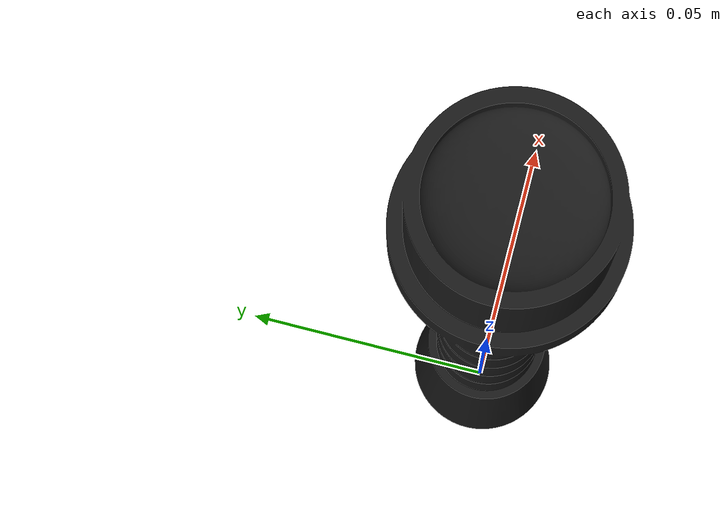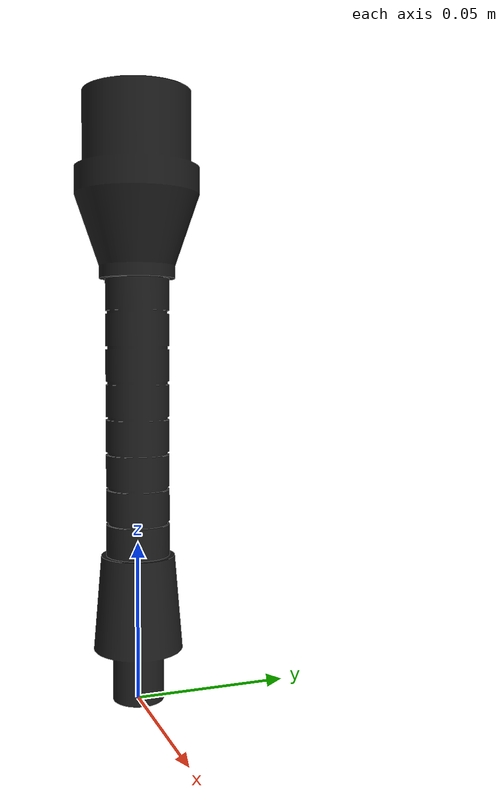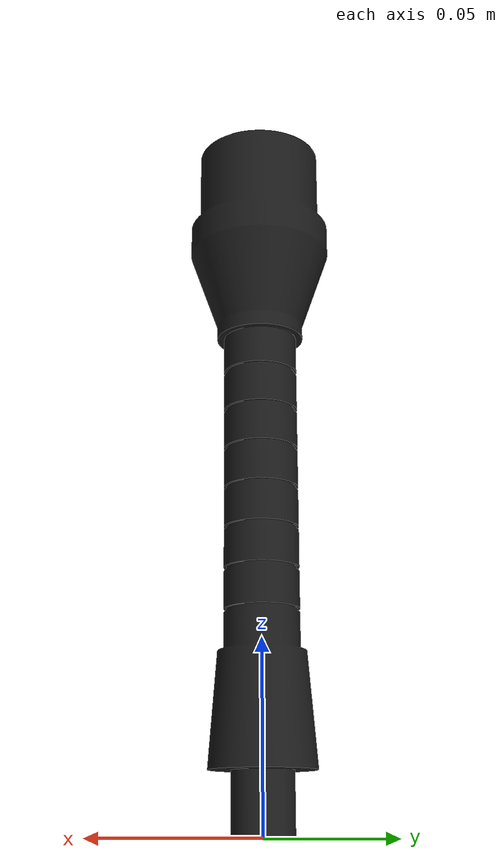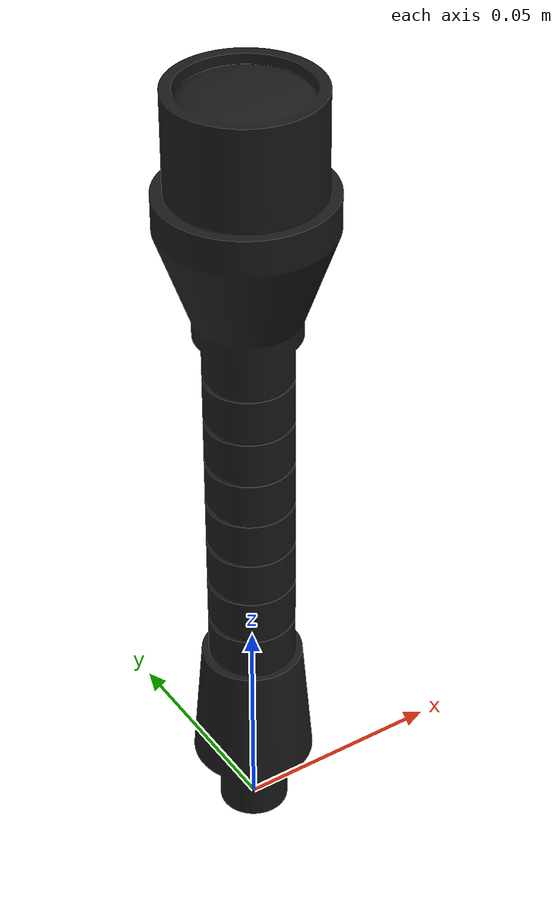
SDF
<?xml version="1.0" ?>
<sdf version="1.4">
  <model name="challenge_torch">
    <static>false</static>
    <link name="link">
      <inertial>
        <mass>0.2</mass>
        <inertia>
          <ixx>0.00030</ixx>
          <ixy>0.0</ixy>
          <ixz>0.0</ixz>
          <iyy>0.00030</iyy>
          <iyz>0.0</iyz>
          <izz>0.000040</izz>
        </inertia>
      </inertial>

      <collision name="collision">
        <geometry>
          <mesh>
            <uri>model://challenge_torch/mesh/challenge_torch.stl</uri>
            <scale>0.001 0.001 0.001</scale>
          </mesh>
        </geometry>
        <surface>
          <friction>
            <ode>
              <mu>2.0</mu>
              <mu2>2.0</mu2>
              <fdir1>1 0 0</fdir1>
            </ode>
          </friction>
          <contact>
            <ode>
              <kp>2000000.0</kp>
              <kd>200.0</kd>
              <min_depth>0.0015</min_depth>
              <max_vel>0.5</max_vel>
            </ode>
          </contact>
        </surface>
      </collision>

      <visual name="visual">
        <geometry>
          <mesh>
            <uri>model://challenge_torch/mesh/challenge_torch.stl</uri>
            <scale>0.001 0.001 0.001</scale>
          </mesh>
        </geometry>
        <material>
          <ambient>0.05 0.05 0.05 1</ambient>
          <diffuse>0.1 0.1 0.1 1</diffuse>
          <specular>0.3 0.3 0.3 1</specular>
          <emissive>0 0 0 1</emissive>
        </material>
      </visual>

      <velocity_decay>
        <linear>0.0</linear>
        <angular>0.0</angular>
      </velocity_decay>
      <self_collide>false</self_collide>
      <kinematic>false</kinematic>
      <gravity>true</gravity>
    </link>
  </model>
</sdf>
